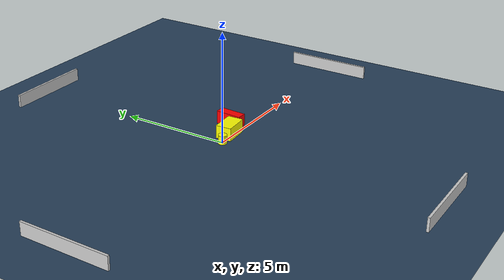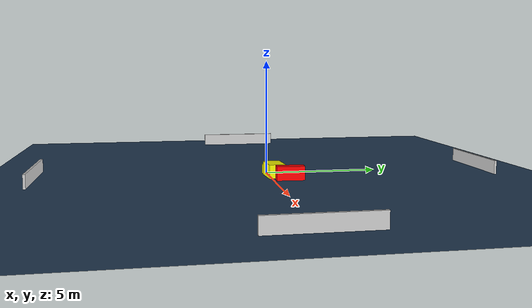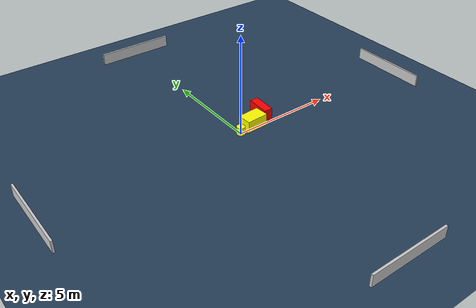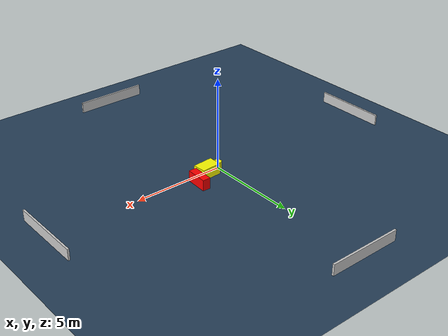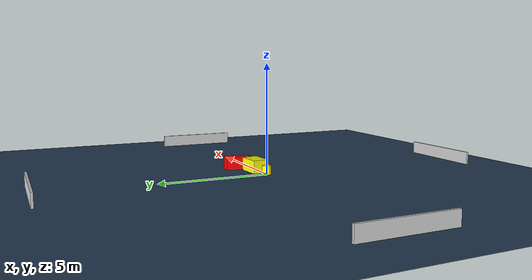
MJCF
<?xml version="1.0" ?>
<mujoco model="generated_environment">
  <option timestep="0.01" integrator="RK4" cone="elliptic"/>
  <default>
    <geom density="1"/>
  </default>
  <asset>
    <texture builtin="gradient" height="3072" name="skybox" rgb1="0.3 0.5 0.7" rgb2="0 0 0" type="skybox" width="512"/>
    <texture builtin="checker" height="300" name="groundplane" rgb1="0.2 0.3 0.4" rgb2="0.1 0.2 0.3" type="2d" width="300"/>
    <material name="groundplane" reflectance="0.2" texrepeat="5 5" texture="groundplane"/>
  </asset>
  <worldbody>
    <light dir="0 0 -1" directional="true" pos="0 0 1.5"/>
    <geom condim="3" friction="0.5 0.005 0.001" material="groundplane" name="floor" pos="0 0 0" size="0 0 0.05" type="plane"/>
    <body name="walls">
      <geom name="wall_1" condim="4" pos="-10.0 0.0 0.3" rgba="0.800000011920929 0.800000011920929 0.800000011920929 1.0" size="0.05 2.0 0.3" type="box"/>
      <geom name="wall_2" condim="4" pos="10.0 0.0 0.3" rgba="0.800000011920929 0.800000011920929 0.800000011920929 1.0" size="0.05 2.0 0.3" type="box"/>
      <geom name="wall_3" condim="4" pos="0.0 -10.0 0.3" rgba="0.800000011920929 0.800000011920929 0.800000011920929 1.0" size="2.0 0.05 0.3" type="box"/>
      <geom name="wall_4" condim="4" pos="0.0 10.0 0.3" rgba="0.800000011920929 0.800000011920929 0.800000011920929 1.0" size="2.0 0.05 0.3" type="box"/>
    </body>
    <body name="robot">
      <joint name="joint_x" type="slide" pos="0 0 0" axis="1 0 0"/>
      <joint name="joint_y" type="slide" pos="0 0 0" axis="0 1 0"/>
      <geom name="robot" type="cylinder" pos="0.0 0.0 0.2" size="0.2 0.2 0.0" mass="5.0" friction="1.0 0.005 0.0001" condim="4" rgba="1.0 1.0 0.0 1.0"/>
    </body>
    <body name="obstacle_1_movable">
      <geom name="obstacle_1_movable" condim="4" pos="0.8530803743480538 0.18934495759413514 0.3" euler="0 0 183.9076550677298" friction="0.0 0.005 0.001" rgba="1.0 1.0 0.0 1.0" size="0.5619809591369271 0.35780909115245174 0.3" type="box" mass="0.1"/>
      <joint type="free"/>
    </body>
    <body name="obstacle_2_static">
      <geom name="obstacle_2_static" condim="4" pos="1.7560007195103866 0.7073578040476801 0.3" euler="0 0 177.25130920498356" friction="0.0 0.005 0.001" rgba="1.0 0.0 0.0 1.0" size="0.21796823685960495 0.5973352094841606 0.3" type="box"/>
    </body>
  </worldbody>
  <actuator>
    <motor name="actuator_x" joint="joint_x" gear="1" ctrlrange="-1 1"/>
    <motor name="actuator_y" joint="joint_y" gear="1" ctrlrange="-1 1"/>
  </actuator>
</mujoco>
